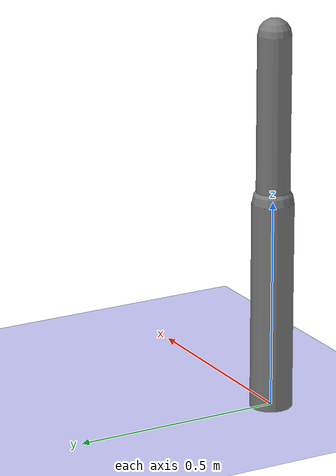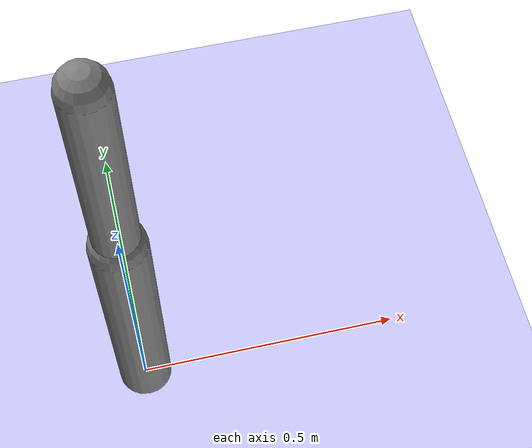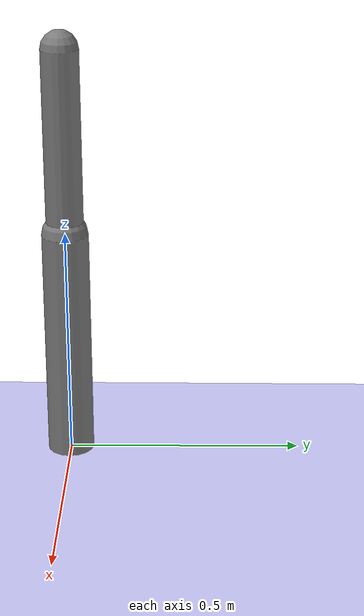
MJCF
<?xml version='1.0' encoding='UTF-8'?>
<mujoco model="test_robot">
  <worldbody>
    <light name="light" pos="0 -3 10" dir="0 0.5 -1" diffuse=".8 .8 .8" specular="0.1 0.1 0.1"/>
    <geom name="floor" type="plane" size="10.0 10.0 0.1" pos="0 0 0" rgba="0.8 0.8 1 1" material=""/>
    <body name="limb0" pos="0 0 0">
      <geom type="capsule" fromto="0 0 0 0 0 0.5" size="0.05" density="1000"/>
      <site type="sphere" size="0.01" name="limb0_site0" pos="0 0 0.5"/>
      <body name="limb1" pos="0 0 0.5">
        <geom type="capsule" fromto="0 0 0 0 0 0.4" size="0.04" density="800"/>
        <joint name="joint_limb0_limb1_0" type="hinge" axis="0 1 0" range="-90 90" damping="5.0"/>
      </body>
    </body>
  </worldbody>
  <actuator>
    <position name="position_actuator_joint_limb0_limb1_0" joint="joint_limb0_limb1_0" gear="1.0" inheritrange="1" kp="10.0"/>
  </actuator>
</mujoco>
